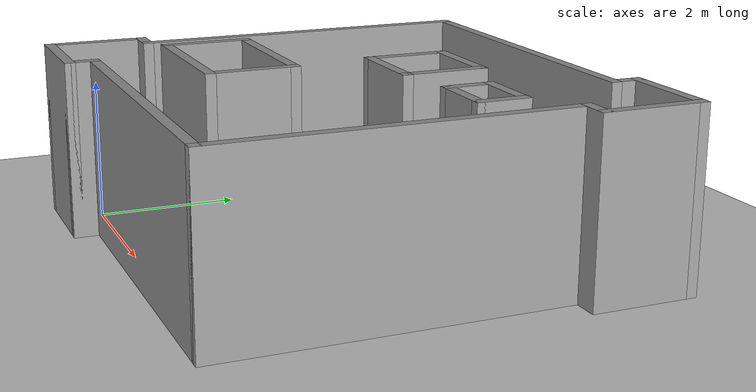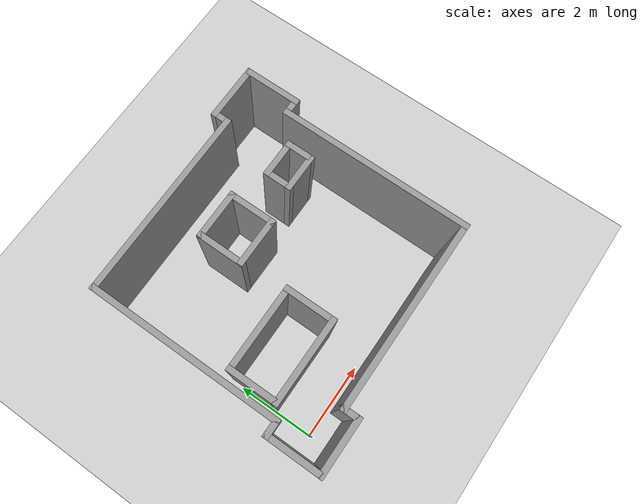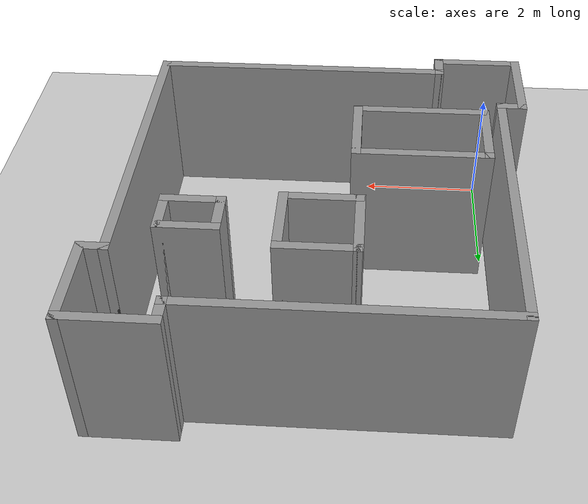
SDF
<sdf version="1.7">
 <world name="map_ign">
  <plugin filename="gz-sim-physics-system" name="gz::sim::systems::Physics"/>
  <plugin filename="gz-sim-user-commands-system" name="gz::sim::systems::UserCommands"/>
  <plugin filename="gz-sim-scene-broadcaster-system" name="gz::sim::systems::SceneBroadcaster"/>
  <plugin filename="gz-sim-sensors-system" name="gz::sim::systems::Sensors">
   <render_engine>ogre2</render_engine>
  </plugin>
  <plugin filename="gz-sim-imu-system" name="gz::sim::systems::Imu"/>
  <gravity>0 0 -9.8000000000000007</gravity>
  <magnetic_field>6.0000000000000002e-06 2.3e-05 -4.1999999999999998e-05</magnetic_field>
  <atmosphere type="adiabatic"/>
  <physics type="ode">
   <max_step_size>0.001</max_step_size>
   <real_time_factor>1</real_time_factor>
   <real_time_update_rate>1000</real_time_update_rate>
  </physics>
  <scene>
   <ambient>0.400000006 0.400000006 0.400000006 1</ambient>
   <background>0.699999988 0.699999988 0.699999988 1</background>
   <shadows>true</shadows>
  </scene>
  <audio><device>default</device></audio>
  <spherical_coordinates>
   <surface_model>EARTH_WGS84</surface_model>
   <latitude_deg>0</latitude_deg>
   <longitude_deg>0</longitude_deg>
   <elevation>0</elevation>
   <heading_deg>0</heading_deg>
  </spherical_coordinates>
  <model name="ground_plane">
   <static>true</static>
   <link name="link">
    <collision name="collision">
     <geometry><plane><normal>0 0 1</normal><size>100 100</size></plane></geometry>
     <surface><friction><ode><mu>100</mu><mu2>50</mu2></ode></friction></surface>
    </collision>
    <visual name="visual">
     <cast_shadows>false</cast_shadows>
     <geometry><plane><normal>0 0 1</normal><size>100 100</size></plane></geometry>
     <material>
      <script><uri>file://media/materials/scripts/gazebo.material</uri><name>Gazebo/Grey</name></script>
     </material>
    </visual>
    <inertial>
     <mass>1</mass>
     <inertia><ixx>1</ixx><ixy>0</ixy><ixz>0</ixz><iyy>1</iyy><iyz>0</iyz><izz>1</izz></inertia>
    </inertial>
   </link>
  </model>
  <model name="wall_simple">
   <pose>2.75 2.75 0 0 0 0</pose>
   <link name="Wall_10">
    <collision name="Wall_10_Collision">
     <geometry><box><size>0.5 0.14999999999999999 2.5</size></box></geometry>
     <pose>0 0 1.25 0 0 0</pose>
    </collision>
    <visual name="Wall_10_Visual">
     <pose>0 0 1.25 0 0 0</pose>
     <geometry><box><size>0.5 0.14999999999999999 2.5</size></box></geometry>
     <material>
      <script><uri>file://media/materials/scripts/gazebo.material</uri><name>Gazebo/Grey</name></script>
      <ambient>1 1 1 1</ambient>
     </material>
     <meta><layer>0</layer></meta>
    </visual>
    <pose>-3.1000000000000001 -1.925 0 0 0 3.1415899999999999</pose>
    <inertial>
     <mass>1</mass>
     <inertia><ixx>1</ixx><ixy>0</ixy><ixz>0</ixz><iyy>1</iyy><iyz>0</iyz><izz>1</izz></inertia>
    </inertial>
   </link>
   <link name="Wall_11">
    <collision name="Wall_11_Collision">
     <geometry><box><size>1.5 0.14999999999999999 2.5</size></box></geometry>
     <pose>0 0 1.25 0 0 0</pose>
    </collision>
    <visual name="Wall_11_Visual">
     <pose>0 0 1.25 0 0 0</pose>
     <geometry><box><size>1.5 0.14999999999999999 2.5</size></box></geometry>
     <material>
      <script><uri>file://media/materials/scripts/gazebo.material</uri><name>Gazebo/Grey</name></script>
      <ambient>1 1 1 1</ambient>
     </material>
     <meta><layer>0</layer></meta>
    </visual>
    <pose>-3.2750000000000017 -2.5999999999999988 0 0 0 -1.5708000000000009</pose>
    <inertial>
     <mass>1</mass>
     <inertia><ixx>1</ixx><ixy>0</ixy><ixz>0</ixz><iyy>1</iyy><iyz>0</iyz><izz>1</izz></inertia>
    </inertial>
   </link>
   <link name="Wall_12">
    <collision name="Wall_12_Collision">
     <geometry><box><size>1.5 0.14999999999999999 2.5</size></box></geometry>
     <pose>0 0 1.25 0 0 0</pose>
    </collision>
    <visual name="Wall_12_Visual">
     <pose>0 0 1.25 0 0 0</pose>
     <geometry><box><size>1.5 0.14999999999999999 2.5</size></box></geometry>
     <material>
      <script><uri>file://media/materials/scripts/gazebo.material</uri><name>Gazebo/Grey</name></script>
      <ambient>1 1 1 1</ambient>
     </material>
     <meta><layer>0</layer></meta>
    </visual>
    <pose>-2.6000000000000028 -3.2749999999999986 0 0 0 0</pose>
    <inertial>
     <mass>1</mass>
     <inertia><ixx>1</ixx><ixy>0</ixy><ixz>0</ixz><iyy>1</iyy><iyz>0</iyz><izz>1</izz></inertia>
    </inertial>
   </link>
   <link name="Wall_13">
    <collision name="Wall_13_Collision">
     <geometry><box><size>0.5 0.14999999999999999 2.5</size></box></geometry>
     <pose>0 0 1.25 0 0 0</pose>
    </collision>
    <visual name="Wall_13_Visual">
     <pose>0 0 1.25 0 0 0</pose>
     <geometry><box><size>0.5 0.14999999999999999 2.5</size></box></geometry>
     <material>
      <script><uri>file://media/materials/scripts/gazebo.material</uri><name>Gazebo/Grey</name></script>
      <ambient>1 1 1 1</ambient>
     </material>
     <meta><layer>0</layer></meta>
    </visual>
    <pose>-1.925000000000002 -3.0999999999999988 0 0 0 1.5708000000000009</pose>
    <inertial>
     <mass>1</mass>
     <inertia><ixx>1</ixx><ixy>0</ixy><ixz>0</ixz><iyy>1</iyy><iyz>0</iyz><izz>1</izz></inertia>
    </inertial>
   </link>
   <link name="Wall_14">
    <collision name="Wall_14_Collision">
     <geometry><box><size>5 0.14999999999999999 2.5</size></box></geometry>
     <pose>0 0 1.25 0 0 0</pose>
    </collision>
    <visual name="Wall_14_Visual">
     <pose>0 0 1.25 0 0 0</pose>
     <geometry><box><size>5 0.14999999999999999 2.5</size></box></geometry>
     <material>
      <script><uri>file://media/materials/scripts/gazebo.material</uri><name>Gazebo/Grey</name></script>
      <ambient>1 1 1 1</ambient>
     </material>
     <meta><layer>0</layer></meta>
    </visual>
    <pose>0.49999999999999867 -2.924999999999998 0 0 0 0</pose>
    <inertial>
     <mass>1</mass>
     <inertia><ixx>1</ixx><ixy>0</ixy><ixz>0</ixz><iyy>1</iyy><iyz>0</iyz><izz>1</izz></inertia>
    </inertial>
   </link>
   <link name="Wall_15">
    <collision name="Wall_15_Collision">
     <geometry><box><size>5 0.14999999999999999 2.5</size></box></geometry>
     <pose>0 0 1.25 0 0 0</pose>
    </collision>
    <visual name="Wall_15_Visual">
     <pose>0 0 1.25 0 0 0</pose>
     <geometry><box><size>5 0.14999999999999999 2.5</size></box></geometry>
     <material>
      <script><uri>file://media/materials/scripts/gazebo.material</uri><name>Gazebo/Grey</name></script>
      <ambient>1 1 1 1</ambient>
     </material>
     <meta><layer>0</layer></meta>
    </visual>
    <pose>2.924999999999998 -0.49999999999999822 0 0 0 1.5708000000000009</pose>
    <inertial>
     <mass>1</mass>
     <inertia><ixx>1</ixx><ixy>0</ixy><ixz>0</ixz><iyy>1</iyy><iyz>0</iyz><izz>1</izz></inertia>
    </inertial>
   </link>
   <link name="Wall_16">
    <collision name="Wall_16_Collision">
     <geometry><box><size>0.5 0.14999999999999999 2.5</size></box></geometry>
     <pose>0 0 1.25 0 0 0</pose>
    </collision>
    <visual name="Wall_16_Visual">
     <pose>0 0 1.25 0 0 0</pose>
     <geometry><box><size>0.5 0.14999999999999999 2.5</size></box></geometry>
     <material>
      <script><uri>file://media/materials/scripts/gazebo.material</uri><name>Gazebo/Grey</name></script>
      <ambient>1 1 1 1</ambient>
     </material>
     <meta><layer>0</layer></meta>
    </visual>
    <pose>3.0999999999999988 1.9250000000000025 0 0 0 0</pose>
    <inertial>
     <mass>1</mass>
     <inertia><ixx>1</ixx><ixy>0</ixy><ixz>0</ixz><iyy>1</iyy><iyz>0</iyz><izz>1</izz></inertia>
    </inertial>
   </link>
   <link name="Wall_17">
    <collision name="Wall_17_Collision">
     <geometry><box><size>1.5 0.14999999999999999 2.5</size></box></geometry>
     <pose>0 0 1.25 0 0 0</pose>
    </collision>
    <visual name="Wall_17_Visual">
     <pose>0 0 1.25 0 0 0</pose>
     <geometry><box><size>1.5 0.14999999999999999 2.5</size></box></geometry>
     <material>
      <script><uri>file://media/materials/scripts/gazebo.material</uri><name>Gazebo/Grey</name></script>
      <ambient>1 1 1 1</ambient>
     </material>
     <meta><layer>0</layer></meta>
    </visual>
    <pose>3.2749999999999977 2.6000000000000023 0 0 0 1.5708000000000009</pose>
    <inertial>
     <mass>1</mass>
     <inertia><ixx>1</ixx><ixy>0</ixy><ixz>0</ixz><iyy>1</iyy><iyz>0</iyz><izz>1</izz></inertia>
    </inertial>
   </link>
   <link name="Wall_18">
    <collision name="Wall_18_Collision">
     <geometry><box><size>1.5 0.14999999999999999 2.5</size></box></geometry>
     <pose>0 0 1.25 0 0 0</pose>
    </collision>
    <visual name="Wall_18_Visual">
     <pose>0 0 1.25 0 0 0</pose>
     <geometry><box><size>1.5 0.14999999999999999 2.5</size></box></geometry>
     <material>
      <script><uri>file://media/materials/scripts/gazebo.material</uri><name>Gazebo/Grey</name></script>
      <ambient>1 1 1 1</ambient>
     </material>
     <meta><layer>0</layer></meta>
    </visual>
    <pose>2.5999999999999988 3.2750000000000012 0 0 0 3.1415899999999999</pose>
    <inertial>
     <mass>1</mass>
     <inertia><ixx>1</ixx><ixy>0</ixy><ixz>0</ixz><iyy>1</iyy><iyz>0</iyz><izz>1</izz></inertia>
    </inertial>
   </link>
   <link name="Wall_19">
    <collision name="Wall_19_Collision">
     <geometry><box><size>0.5 0.14999999999999999 2.5</size></box></geometry>
     <pose>0 0 1.25 0 0 0</pose>
    </collision>
    <visual name="Wall_19_Visual">
     <pose>0 0 1.25 0 0 0</pose>
     <geometry><box><size>0.5 0.14999999999999999 2.5</size></box></geometry>
     <material>
      <script><uri>file://media/materials/scripts/gazebo.material</uri><name>Gazebo/Grey</name></script>
      <ambient>1 1 1 1</ambient>
     </material>
     <meta><layer>0</layer></meta>
    </visual>
    <pose>1.924999999999998 3.1000000000000014 0 0 0 -1.5708000000000009</pose>
    <inertial>
     <mass>1</mass>
     <inertia><ixx>1</ixx><ixy>0</ixy><ixz>0</ixz><iyy>1</iyy><iyz>0</iyz><izz>1</izz></inertia>
    </inertial>
   </link>
   <link name="Wall_20">
    <collision name="Wall_20_Collision">
     <geometry><box><size>5 0.14999999999999999 2.5</size></box></geometry>
     <pose>0 0 1.25 0 0 0</pose>
    </collision>
    <visual name="Wall_20_Visual">
     <pose>0 0 1.25 0 0 0</pose>
     <geometry><box><size>5 0.14999999999999999 2.5</size></box></geometry>
     <material>
      <script><uri>file://media/materials/scripts/gazebo.material</uri><name>Gazebo/Grey</name></script>
      <ambient>1 1 1 1</ambient>
     </material>
     <meta><layer>0</layer></meta>
    </visual>
    <pose>-0.50000000000000133 2.9250000000000016 0 0 0 3.1415899999999999</pose>
    <inertial>
     <mass>1</mass>
     <inertia><ixx>1</ixx><ixy>0</ixy><ixz>0</ixz><iyy>1</iyy><iyz>0</iyz><izz>1</izz></inertia>
    </inertial>
   </link>
   <link name="Wall_21">
    <collision name="Wall_21_Collision">
     <geometry><box><size>5 0.14999999999999999 2.5</size></box></geometry>
     <pose>0 0 1.25 0 0 0</pose>
    </collision>
    <visual name="Wall_21_Visual">
     <pose>0 0 1.25 0 0 0</pose>
     <geometry><box><size>5 0.14999999999999999 2.5</size></box></geometry>
     <material>
      <script><uri>file://media/materials/scripts/gazebo.material</uri><name>Gazebo/Grey</name></script>
      <ambient>1 1 1 1</ambient>
     </material>
     <meta><layer>0</layer></meta>
    </visual>
    <pose>-2.925000000000002 0.50000000000000178 0 0 0 -1.5708000000000009</pose>
    <inertial>
     <mass>1</mass>
     <inertia><ixx>1</ixx><ixy>0</ixy><ixz>0</ixz><iyy>1</iyy><iyz>0</iyz><izz>1</izz></inertia>
    </inertial>
   </link>
   <link name="Wall_26">
    <collision name="Wall_26_Collision">
     <geometry><box><size>2.25 0.14999999999999999 2.5</size></box></geometry>
     <pose>0 0 1.25 0 0 0</pose>
    </collision>
    <visual name="Wall_26_Visual">
     <pose>0 0 1.25 0 0 0</pose>
     <geometry><box><size>2.25 0.14999999999999999 2.5</size></box></geometry>
     <material>
      <script><uri>file://media/materials/scripts/gazebo.material</uri><name>Gazebo/Grey</name></script>
      <ambient>1 1 1 1</ambient>
     </material>
     <meta><layer>0</layer></meta>
    </visual>
    <pose>-1.5816700000000021 -1.7087699999999981 0 0 0 3.1415899999999999</pose>
    <inertial>
     <mass>1</mass>
     <inertia><ixx>1</ixx><ixy>0</ixy><ixz>0</ixz><iyy>1</iyy><iyz>0</iyz><izz>1</izz></inertia>
    </inertial>
   </link>
   <link name="Wall_32">
    <collision name="Wall_32_Collision">
     <geometry><box><size>1 0.14999999999999999 2.5</size></box></geometry>
     <pose>0 0 1.25 0 0 0</pose>
    </collision>
    <visual name="Wall_32_Visual">
     <pose>0 0 1.25 0 0 0</pose>
     <geometry><box><size>1 0.14999999999999999 2.5</size></box></geometry>
     <material>
      <script><uri>file://media/materials/scripts/gazebo.material</uri><name>Gazebo/Grey</name></script>
      <ambient>1 1 1 1</ambient>
     </material>
     <meta><layer>0</layer></meta>
    </visual>
    <pose>1.8526699999999989 0.81242300000000212 0 0 0 3.1415899999999999</pose>
    <inertial>
     <mass>1</mass>
     <inertia><ixx>1</ixx><ixy>0</ixy><ixz>0</ixz><iyy>1</iyy><iyz>0</iyz><izz>1</izz></inertia>
    </inertial>
   </link>
   <link name="Wall_41">
    <collision name="Wall_41_Collision">
     <geometry><box><size>0.75 0.14999999999999999 2.5</size></box></geometry>
     <pose>0 0 1.25 0 0 0</pose>
    </collision>
    <visual name="Wall_41_Visual">
     <pose>0 0 1.25 0 0 0</pose>
     <geometry><box><size>0.75 0.14999999999999999 2.5</size></box></geometry>
     <material>
      <script><uri>file://media/materials/scripts/gazebo.material</uri><name>Gazebo/Grey</name></script>
      <ambient>1 1 1 1</ambient>
     </material>
     <meta><layer>0</layer></meta>
    </visual>
    <pose>1.4276699999999982 1.112420000000002 0 0 0 1.5708000000000009</pose>
    <inertial>
     <mass>1</mass>
     <inertia><ixx>1</ixx><ixy>0</ixy><ixz>0</ixz><iyy>1</iyy><iyz>0</iyz><izz>1</izz></inertia>
    </inertial>
   </link>
   <link name="Wall_42">
    <collision name="Wall_42_Collision">
     <geometry><box><size>1 0.14999999999999999 2.5</size></box></geometry>
     <pose>0 0 1.25 0 0 0</pose>
    </collision>
    <visual name="Wall_42_Visual">
     <pose>0 0 1.25 0 0 0</pose>
     <geometry><box><size>1 0.14999999999999999 2.5</size></box></geometry>
     <material>
      <script><uri>file://media/materials/scripts/gazebo.material</uri><name>Gazebo/Grey</name></script>
      <ambient>1 1 1 1</ambient>
     </material>
     <meta><layer>0</layer></meta>
    </visual>
    <pose>1.8526699999999989 1.4124200000000018 0 0 0 0</pose>
    <inertial>
     <mass>1</mass>
     <inertia><ixx>1</ixx><ixy>0</ixy><ixz>0</ixz><iyy>1</iyy><iyz>0</iyz><izz>1</izz></inertia>
    </inertial>
   </link>
   <link name="Wall_43">
    <collision name="Wall_43_Collision">
     <geometry><box><size>0.75 0.14999999999999999 2.5</size></box></geometry>
     <pose>0 0 1.25 0 0 0</pose>
    </collision>
    <visual name="Wall_43_Visual">
     <pose>0 0 1.25 0 0 0</pose>
     <geometry><box><size>0.75 0.14999999999999999 2.5</size></box></geometry>
     <material>
      <script><uri>file://media/materials/scripts/gazebo.material</uri><name>Gazebo/Grey</name></script>
      <ambient>1 1 1 1</ambient>
     </material>
     <meta><layer>0</layer></meta>
    </visual>
    <pose>2.2776699999999979 1.112420000000002 0 0 0 -1.5708000000000009</pose>
    <inertial>
     <mass>1</mass>
     <inertia><ixx>1</ixx><ixy>0</ixy><ixz>0</ixz><iyy>1</iyy><iyz>0</iyz><izz>1</izz></inertia>
    </inertial>
   </link>
   <link name="Wall_46">
    <collision name="Wall_46_Collision">
     <geometry><box><size>1.29257 0.14999999999999999 2.5</size></box></geometry>
     <pose>0 0 1.25 0 0 0</pose>
    </collision>
    <visual name="Wall_46_Visual">
     <pose>0 0 1.25 0 0 0</pose>
     <geometry><box><size>1.29257 0.14999999999999999 2.5</size></box></geometry>
     <material>
      <script><uri>file://media/materials/scripts/gazebo.material</uri><name>Gazebo/Grey</name></script>
      <ambient>1 1 1 1</ambient>
     </material>
     <meta><layer>0</layer></meta>
    </visual>
    <pose>-0.054383000000002735 0.65097000000000182 0 0 0 3.1415899999999999</pose>
    <inertial>
     <mass>1</mass>
     <inertia><ixx>1</ixx><ixy>0</ixy><ixz>0</ixz><iyy>1</iyy><iyz>0</iyz><izz>1</izz></inertia>
    </inertial>
   </link>
   <link name="Wall_47">
    <collision name="Wall_47_Collision">
     <geometry><box><size>1.25 0.14999999999999999 2.5</size></box></geometry>
     <pose>0 0 1.25 0 0 0</pose>
    </collision>
    <visual name="Wall_47_Visual">
     <pose>0 0 1.25 0 0 0</pose>
     <geometry><box><size>1.25 0.14999999999999999 2.5</size></box></geometry>
     <material>
      <script><uri>file://media/materials/scripts/gazebo.material</uri><name>Gazebo/Grey</name></script>
      <ambient>1 1 1 1</ambient>
     </material>
     <meta><layer>0</layer></meta>
    </visual>
    <pose>-0.64033300000000315 1.2009700000000021 0 0 0 1.5708000000000009</pose>
    <inertial>
     <mass>1</mass>
     <inertia><ixx>1</ixx><ixy>0</ixy><ixz>0</ixz><iyy>1</iyy><iyz>0</iyz><izz>1</izz></inertia>
    </inertial>
   </link>
   <link name="Wall_48">
    <collision name="Wall_48_Collision">
     <geometry><box><size>1.29257 0.14999999999999999 2.5</size></box></geometry>
     <pose>0 0 1.25 0 0 0</pose>
    </collision>
    <visual name="Wall_48_Visual">
     <pose>0 0 1.25 0 0 0</pose>
     <geometry><box><size>1.29257 0.14999999999999999 2.5</size></box></geometry>
     <material>
      <script><uri>file://media/materials/scripts/gazebo.material</uri><name>Gazebo/Grey</name></script>
      <ambient>1 1 1 1</ambient>
     </material>
     <meta><layer>0</layer></meta>
    </visual>
    <pose>-0.054383000000002735 1.7509700000000024 0 0 0 0</pose>
    <inertial>
     <mass>1</mass>
     <inertia><ixx>1</ixx><ixy>0</ixy><ixz>0</ixz><iyy>1</iyy><iyz>0</iyz><izz>1</izz></inertia>
    </inertial>
   </link>
   <link name="Wall_49">
    <collision name="Wall_49_Collision">
     <geometry><box><size>1.25 0.14999999999999999 2.5</size></box></geometry>
     <pose>0 0 1.25 0 0 0</pose>
    </collision>
    <visual name="Wall_49_Visual">
     <pose>0 0 1.25 0 0 0</pose>
     <geometry><box><size>1.25 0.14999999999999999 2.5</size></box></geometry>
     <material>
      <script><uri>file://media/materials/scripts/gazebo.material</uri><name>Gazebo/Grey</name></script>
      <ambient>1 1 1 1</ambient>
     </material>
     <meta><layer>0</layer></meta>
    </visual>
    <pose>0.51690199999999686 1.2009700000000021 0 0 0 -1.5708000000000009</pose>
    <inertial>
     <mass>1</mass>
     <inertia><ixx>1</ixx><ixy>0</ixy><ixz>0</ixz><iyy>1</iyy><iyz>0</iyz><izz>1</izz></inertia>
    </inertial>
   </link>
   <link name="Wall_51">
    <collision name="Wall_51_Collision">
     <geometry><box><size>1.32474 0.14999999999999999 2.5</size></box></geometry>
     <pose>0 0 1.25 0 0 0</pose>
    </collision>
    <visual name="Wall_51_Visual">
     <pose>0 0 1.25 0 0 0</pose>
     <geometry><box><size>1.32474 0.14999999999999999 2.5</size></box></geometry>
     <material>
      <script><uri>file://media/materials/scripts/gazebo.material</uri><name>Gazebo/Grey</name></script>
      <ambient>1 1 1 1</ambient>
     </material>
     <meta><layer>0</layer></meta>
    </visual>
    <pose>-2.6316700000000028 -1.1067399999999981 0 0 0 1.5708000000000009</pose>
    <inertial>
     <mass>1</mass>
     <inertia><ixx>1</ixx><ixy>0</ixy><ixz>0</ixz><iyy>1</iyy><iyz>0</iyz><izz>1</izz></inertia>
    </inertial>
   </link>
   <link name="Wall_52">
    <collision name="Wall_52_Collision">
     <geometry><box><size>2.25 0.14999999999999999 2.5</size></box></geometry>
     <pose>0 0 1.25 0 0 0</pose>
    </collision>
    <visual name="Wall_52_Visual">
     <pose>0 0 1.25 0 0 0</pose>
     <geometry><box><size>2.25 0.14999999999999999 2.5</size></box></geometry>
     <material>
      <script><uri>file://media/materials/scripts/gazebo.material</uri><name>Gazebo/Grey</name></script>
      <ambient>1 1 1 1</ambient>
     </material>
     <meta><layer>0</layer></meta>
    </visual>
    <pose>-1.5816700000000021 -0.51936899999999797 0 0 0 0</pose>
    <inertial>
     <mass>1</mass>
     <inertia><ixx>1</ixx><ixy>0</ixy><ixz>0</ixz><iyy>1</iyy><iyz>0</iyz><izz>1</izz></inertia>
    </inertial>
   </link>
   <link name="Wall_53">
    <collision name="Wall_53_Collision">
     <geometry><box><size>1.32474 0.14999999999999999 2.5</size></box></geometry>
     <pose>0 0 1.25 0 0 0</pose>
    </collision>
    <visual name="Wall_53_Visual">
     <pose>0 0 1.25 0 0 0</pose>
     <geometry><box><size>1.32474 0.14999999999999999 2.5</size></box></geometry>
     <material>
      <script><uri>file://media/materials/scripts/gazebo.material</uri><name>Gazebo/Grey</name></script>
      <ambient>1 1 1 1</ambient>
     </material>
     <meta><layer>0</layer></meta>
    </visual>
    <pose>-0.53167500000000301 -1.1067399999999981 0 0 0 -1.5708000000000009</pose>
    <inertial>
     <mass>1</mass>
     <inertia><ixx>1</ixx><ixy>0</ixy><ixz>0</ixz><iyy>1</iyy><iyz>0</iyz><izz>1</izz></inertia>
    </inertial>
   </link>
   <static>true</static>
  </model>
  <model name="box_r">
   <link name="link">
    <inertial>
     <mass>0.0875</mass>
     <inertia><ixx>116.667</ixx><ixy>0</ixy><ixz>0</ixz><iyy>116.667</iyy><iyz>0</iyz><izz>116.667</izz></inertia>
    </inertial>
    <visual name="visual">
     <geometry><box><size>0.050000000000000003 0.050000000000000003 0.050000000000000003</size></box></geometry>
     <material>
      <script><name>Gazebo/Grey</name><uri>file://media/materials/scripts/gazebo.material</uri></script>
      <shader type="pixel"><normal_map>__default__</normal_map></shader>
      <ambient>1 0 0 1</ambient>
      <diffuse>1 0 0 1</diffuse>
      <specular>1 0 0 1</specular>
      <emissive>1 0 0 1</emissive>
     </material>
    </visual>
    <collision name="collision">
     <geometry><box><size>0.050000000000000003 0.050000000000000003 0.050000000000000003</size></box></geometry>
     <surface>
      <friction>
       <ode><mu>1</mu><mu2>1</mu2><fdir1>0 0 0</fdir1><slip1>0</slip1><slip2>0</slip2></ode>
       <torsional>
        <coefficient>1</coefficient>
        <patch_radius>0</patch_radius>
        <surface_radius>0</surface_radius>
        <use_patch_radius>true</use_patch_radius>
        <ode><slip>0</slip></ode>
       </torsional>
      </friction>
      <bounce><restitution_coefficient>0</restitution_coefficient><threshold>1000000</threshold></bounce>
      <contact>
       <collide_without_contact>false</collide_without_contact>
       <collide_without_contact_bitmask>1</collide_without_contact_bitmask>
       <collide_bitmask>1</collide_bitmask>
       <ode>
        <soft_cfm>0</soft_cfm>
        <soft_erp>0.20000000000000001</soft_erp>
        <kp>10000000000000</kp>
        <kd>1</kd>
        <max_vel>0.01</max_vel>
        <min_depth>0</min_depth>
       </ode>
       <bullet>
        <split_impulse>true</split_impulse>
        <split_impulse_penetration_threshold>-0.01</split_impulse_penetration_threshold>
        <soft_cfm>0</soft_cfm>
        <soft_erp>0.20000000000000001</soft_erp>
        <kp>10000000000000</kp>
        <kd>1</kd>
       </bullet>
      </contact>
     </surface>
    </collision>
   </link>
   <static>false</static>
   <pose>6.0000000000000002e-06 0.50000299999999998 0.02503 -5.0000000000000002e-05 -0.0011510000000000003 -5.9999999999999985e-06</pose>
  </model>
  <light name="sun1" type="directional">
   <pose>0 0 10 0 0 0</pose>
   <intensity>1</intensity>
   <direction>-0.5 0.10000000000000001 -0.90000000000000002</direction>
   <diffuse>0.800000012 0.800000012 0.800000012 1</diffuse>
   <specular>0.200000003 0.200000003 0.200000003 1</specular>
   <attenuation>
    <range>1000</range>
    <linear>0.0099999997764825821</linear>
    <constant>0.89999997615814209</constant>
    <quadratic>0.0010000000474974513</quadratic>
   </attenuation>
   <spot><inner_angle>0</inner_angle><outer_angle>0</outer_angle><falloff>0</falloff></spot>
  </light>
 </world>
</sdf>
